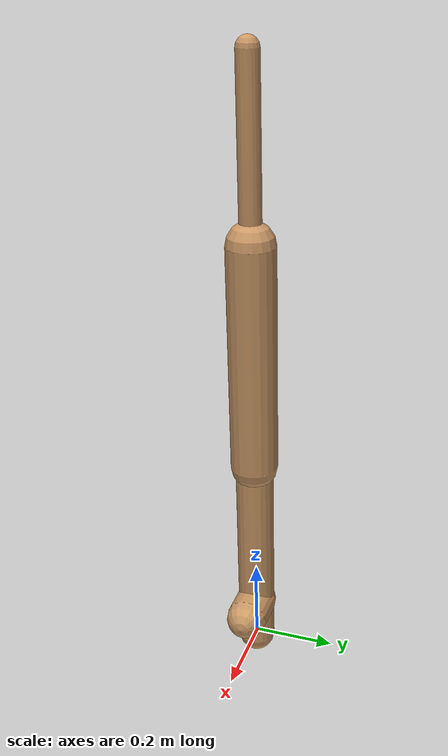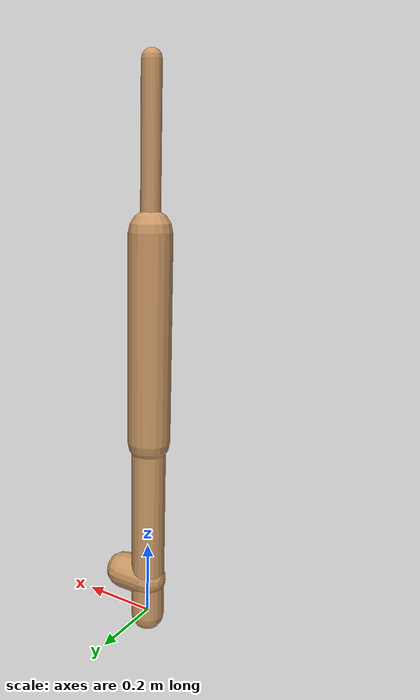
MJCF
<mujoco model="walker2d">
  <compiler angle="degree" coordinate="global" inertiafromgeom="true" />
  <default>
    <joint armature="0.01" damping=".1" limited="true" />
    <geom conaffinity="0" condim="3" contype="1" density="1000" friction="0.8 .1 .1" rgba="0.8 0.6 .4 1" />
  </default>
  <option integrator="RK4" timestep="0.002" />
  <worldbody>

    <body name="torso" pos="0 0 0.2059520865529806">
      <joint armature="0" axis="1 0 0" damping="0" limited="false" name="ignorex" pos="0 0 0" stiffness="0" type="slide" />
      <joint armature="0" axis="0 0 1" damping="0" limited="false" name="ignorez" pos="0 0 0" ref="1.25" stiffness="0" type="slide" />
      <joint armature="0" axis="0 1 0" damping="0" limited="false" name="ignorey" pos="0 0 0" stiffness="0" type="hinge" />
      <geom fromto="0 0 1.45 0 0 1.05" name="torso_geom" size="0.025402615342101878" type="capsule" />
      <body name="thigh">
        <joint axis="0 -1 0" name="thigh_joint" pos="0 0 1.05" range="-150 0" type="hinge" />
        <geom fromto="0.0 0.0 1.05 0.0 0.0 0.5024437484749039" name="thigh_geom" size="0.05652409835562183" type="capsule" />
        <body name="leg" pos="0.0 0.0 -0.09755625152509606">
          <joint axis="0 -1 0" name="leg_joint" pos="0 0 0.6" range="-150 0" type="hinge" />
          <geom fromto="0.0 0.0 0.6 0.0 0.0 -0.008395835027884518" name="leg_geom" size="0.04521927868449747" type="capsule" />
          <body name="foot" pos="0.0 0.0 -0.10839583502788452">
            <joint axis="0 -1 0" name="foot_joint" pos="0 0 0.1" range="-45 45" type="hinge" />
            <geom fromto="0.0 0.0 0.1 0.0795796598298799 0.0 0.1" name="foot_geom" size="0.04997132297623199" type="capsule" />
          </body>
        </body>
      </body>

      <body name="thigh_left">
        <joint axis="0 -1 0" name="thigh_left_joint" pos="0 0 1.05" range="-150 0" type="hinge" />
        <geom fromto="0.0 0.0 1.05 0.0 0.0 0.5024437484749039" name="thigh_left_geom" rgba=".7 .3 .6 1" size="0.05652409835562183" type="capsule" />
        <body name="leg_left" pos="0.0 0.0 -0.09755625152509606">
          <joint axis="0 -1 0" name="leg_left_joint" pos="0 0 0.6" range="-150 0" type="hinge" />
          <geom fromto="0.0 0.0 0.6 0.0 0.0 -0.008395835027884518" name="leg_left_geom" rgba=".7 .3 .6 1" size="0.04521927868449747" type="capsule" />
          <body name="foot_left" pos="0.0 0.0 -0.10839583502788452">
            <joint axis="0 -1 0" name="foot_left_joint" pos="0 0 0.1" range="-45 45" type="hinge" />
            <geom fromto="0.0 0.0 0.1 0.0795796598298799 0.0 0.1" name="foot_left_geom" rgba=".7 .3 .6 1" size="0.04997132297623199" type="capsule" />
          </body>
        </body>
      </body>
    </body>
  </worldbody>
  <actuator>

    <motor ctrllimited="true" ctrlrange="-1.0 1.0" gear="100" joint="thigh_joint" />
    <motor ctrllimited="true" ctrlrange="-1.0 1.0" gear="100" joint="leg_joint" />
    <motor ctrllimited="true" ctrlrange="-1.0 1.0" gear="100" joint="foot_joint" />
    <motor ctrllimited="true" ctrlrange="-1.0 1.0" gear="100" joint="thigh_left_joint" />
    <motor ctrllimited="true" ctrlrange="-1.0 1.0" gear="100" joint="leg_left_joint" />
    <motor ctrllimited="true" ctrlrange="-1.0 1.0" gear="100" joint="foot_left_joint" />

  </actuator>
</mujoco>
